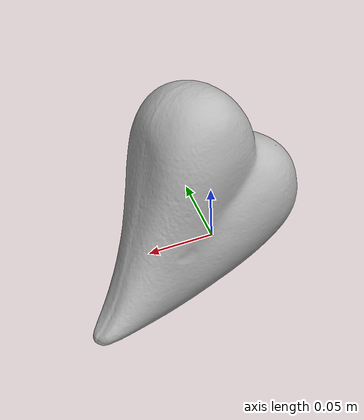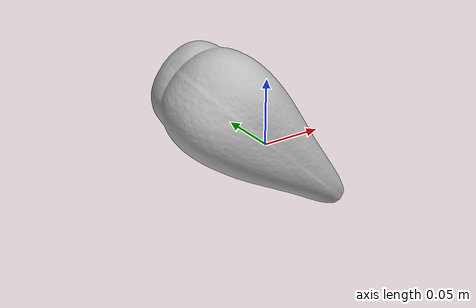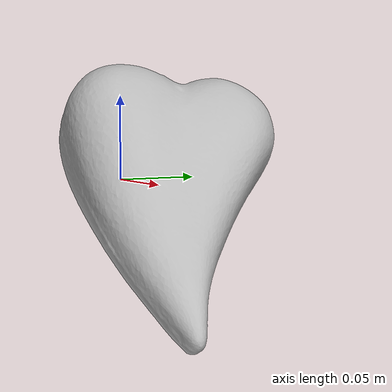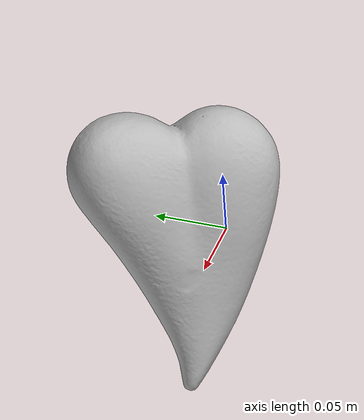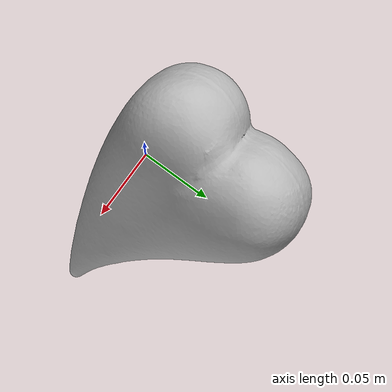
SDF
<?xml version='1.0'?>
<sdf version="1.4">
  <model name="Heart1">
    <static>false</static>
    <link name="link">
      <inertial>
        <pose>-0.0024446681723288076 0.034700576330759236 0.00783889877372062 0.3434318086315833 0.8227163443705658 3.0493430628228158</pose>
        <mass>0.1056218520478208</mass>
        <inertia>
          <ixx>0.00028606569927356517</ixx>
          <ixy>3.28441164423929e-20</ixy>
          <ixz>-2.354408441278096e-20</ixz>
          <iyy>0.00021636454172563254</iyy>
          <iyz>-3.0590142123141654e-20</iyz>
          <izz>0.00014676314929952048</izz>
        </inertia>
      </inertial>
      <collision name="collision">
        <geometry>
          <mesh>
            <!-- Use a downsampled mesh for collisions -->
            <uri>model:///Heart1/Heart1_250_collision.obj</uri>
	        </mesh>
        </geometry>
        <surface>
      </surface>
      </collision>
      <visual name="visual">
        <geometry>
          <mesh>
            <uri>model:///Heart1/Heart1_25k_tex.obj</uri>
	        </mesh>
        </geometry>
        <material>
          <script>
            <uri>model:///Heart1/Heart1.material</uri>
            <name>Heart1</name>
          </script>
        </material>
      </visual>
    </link>
  </model>
</sdf>
